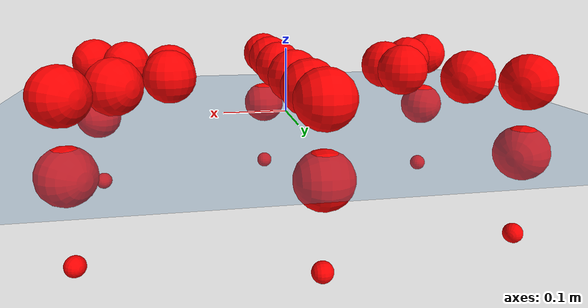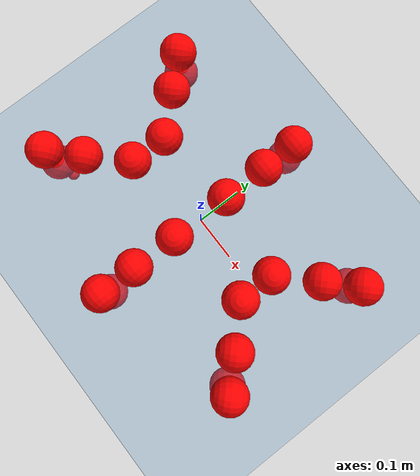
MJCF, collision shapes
<mujoco model="Golem">
  <compiler angle="radian" assetdir="assets" balanceinertia="true" inertiafromgeom="false"/>

  <option timestep="0.005" density="1.2" viscosity="2e-05"/>

  <size nkey="1"/>

  <visual>
    <quality shadowsize="8192"/>
    <map shadowclip="0.5"/>
  </visual>

  <default>
    <default class="/">
      <joint armature="0.01" damping="0.01" frictionloss="0.01"/>
      <geom contype="0" conaffinity="0" group="1" solref="-1000 -80"/>
      <site size="0.01 0.005 0.005" group="5"/>
      <general forcelimited="true" biastype="affine" gainprm="25" biasprm="0 -25 -0.5"/>
      <default class="visual">
        <geom type="mesh" group="2"/>
      </default>
      <default class="collision">
        <geom group="3"/>
      </default>
      <default class="foot">
        <geom size="0.01 0 0" condim="6" group="4" priority="1" solimp="0.015 1 0.01"/>
      </default>
      <default class="reward_collision_sphere">
        <geom group="5" rgba="1 0 0 1"/>
      </default>
    </default>
  </default>

  <asset>
    <texture type="skybox" colorspace="auto" name="//unnamed_texture_0" builtin="gradient" rgb1="0.95 0.95 0.95" rgb2="0.95 0.95 0.95" width="100" height="600"/>
    <texture type="2d" colorspace="auto" name="texplane" builtin="checker" rgb1="0.345 0.575 0.748" rgb2="0.345 0.575 0.748" markrgb="1 1 1" width="512" height="512"/>
    <material name="MatPlane" class="/" texture="texplane" texuniform="true" texrepeat="2 2" specular="0.9"/>
    <mesh name="body" class="/" file="body.stl" scale="0.001 0.001 0.001"/>
    <mesh name="coxa" class="/" file="coxa.stl" scale="0.001 0.001 0.001"/>
    <mesh name="femur" class="/" file="femur.stl" scale="0.001 0.001 0.001"/>
    <mesh name="tibia" class="/" file="tibia.stl" scale="0.001 0.001 0.001"/>
    <mesh name="tarsus" class="/" file="tarsus.stl" scale="0.001 0.001 0.001"/>
  </asset>

  <worldbody>
    <geom name="floor" class="/" size="100 100 0.125" type="plane" group="0" material="MatPlane"/>
    <light name="toplight_shadow" class="/" pos="0 0 5" dir="0.0990148 0.0990148 -0.990148" type="directional" ambient="0.04 0.04 0.04" diffuse="0.55 0.55 0.55" specular="0.12 0.12 0.12"/>
    <light name="toplight_fill" class="/" pos="0 0 5" dir="0.0990148 0.0990148 -0.990148" type="directional" castshadow="false" ambient="0.04 0.04 0.04" diffuse="0.3 0.3 0.3" specular="0.08 0.08 0.08"/>
    <body name="trunk" pos="0.00084671 1.55514e-05 0.000802868" quat="1 -2.79137e-05 -0.000182344 0.000120092">
      <inertial pos="-0.000403893 -0.000594617 -0.00389518" quat="0.999999 0.000645398 0.00111281 -0.000116079" mass="3.51944" diaginertia="0.01987 0.0026389 0.0114885"/>
      <joint name="//unnamed_joint_0" type="free"/>
      <geom name="//unnamed_geom_1" class="/" pos="0 0 0.0656337" quat="1 0 0 0" type="mesh" rgba="0.9 0.9 0.9 1" mesh="body"/>
      <site name="imu" class="/" pos="0.145714 0.00022963 0.106113" size="0.00979059"/>
      <camera name="track" class="/" pos="0 -1.53057 0" quat="0.707107 0.707107 0 0" mode="trackcom"/>
      <camera name="ego_camera" class="/" pos="0.149027 0 0.102553" quat="-0.5 -0.5 0.5 0.5"/>
      <body name="coxa_RR" pos="-0.203551 -0.0641521 0.0651401" quat="0.382819 -9.73923e-05 0.000133969 -0.923823">
        <inertial pos="-0.000148728 3.78038e-05 0.000787125" quat="0.99999 0.000551733 0.00212078 0.00389354" mass="0.189516" diaginertia="0.0199139 0.00265432 0.0114477"/>
        <joint name="coxa_joint_RR" class="/" pos="0 0 0" axis="-0.0040708 -0.00475555 -0.99998" range="-3.12785 3.14226" armature="0.0101259" damping="0.00517697" frictionloss="0.010222"/>
        <geom name="//unnamed_geom_2" class="/" type="mesh" rgba="0.2 0.2 0.2 1" mesh="coxa"/>
        <geom name="//unnamed_geom_3" class="reward_collision_sphere" size="0.0391624" pos="-0.0343909 0 0"/>
        <body name="femur_RR" pos="0.0678345 0.00144161 4.83601e-05" quat="0.500209 -0.500078 0.499713 0.5">
          <inertial pos="0.000514018 5.89726e-05 0.000751546" quat="0.999997 -0.000542333 0.00238519 0.000370937" mass="0.187624" diaginertia="0.0195739 0.00261642 0.0113398"/>
          <joint name="femur_joint_RR" class="/" pos="0 0 0" axis="-0.000822558 0.00153004 -0.999998" range="-3.12948 3.13853" armature="0.00981136" damping="0" frictionloss="0.0101814"/>
          <geom name="//unnamed_geom_4" class="/" type="mesh" rgba="0.9 0.9 0.9 1" mesh="femur"/>
          <geom name="//unnamed_geom_5" class="reward_collision_sphere" size="0.0391624"/>
          <body name="tibia_RR" pos="-0.000618945 -0.0822904 -0.000471182" quat="-3.64161e-05 1 7.04092e-06 -6.654e-05">
            <inertial pos="-0.000665174 -0.000957663 -0.000342765" quat="1 2.96747e-05 0.000202565 -3.08427e-05" mass="0.185971" diaginertia="0.0196873 0.00262266 0.011316"/>
            <joint name="tibia_joint_RR" class="/" pos="0 0 0" axis="0.000119998 0.00151524 0.999999" range="-3.13982 3.13812" armature="0.0098535" damping="0.00282026" frictionloss="0.0102303"/>
            <geom name="//unnamed_geom_6" class="/" type="mesh" rgba="0.2 0.2 0.2 1" mesh="tibia"/>
            <geom name="//unnamed_geom_7" class="reward_collision_sphere" size="0.0391624"/>
            <body name="tarsus_RR" pos="0.0998913 -0.000202415 -0.000606443" quat="1 5.95322e-05 5.42502e-06 1.72877e-05">
              <inertial pos="0.0698812 0.00080647 0.000144092" quat="0.498765 0.502848 0.497199 0.501169" mass="0.185318" diaginertia="0.0197436 0.00260409 0.0113662"/>
              <joint name="tarsus_joint_RR" class="/" pos="0 0 0" axis="0.000345482 -6.15383e-05 1" range="-3.15279 3.15601" armature="0.00966872" damping="0.000978606" frictionloss="0.00975971"/>
              <geom name="//unnamed_geom_8" class="/" type="mesh" rgba="0.9 0.9 0.9 1" mesh="tarsus"/>
              <geom name="foot_1" class="foot" size="0.00940178" pos="0.128393 0 0" quat="0 -0.707107 0 0.707107"/>
              <geom name="//unnamed_geom_10" class="reward_collision_sphere" size="0.0391624"/>
              <geom name="//unnamed_geom_11" class="reward_collision_sphere" size="0.0146859" pos="0.123234 0 0"/>
              <site name="foot_1" class="foot" pos="0.128393 0 0" quat="0 -0.707107 0 0.707107" size="0.00979059"/>
            </body>
          </body>
        </body>
      </body>
      <body name="coxa_RM" pos="-0.000702531 -0.102088 0.064601" quat="0.707007 0.000187449 -0.000226059 -0.707207">
        <inertial pos="-9.80239e-05 0.000979359 -0.000352713" quat="0.999996 -0.00163269 -0.000354862 -0.00214895" mass="0.187543" diaginertia="0.0197667 0.00262557 0.0112858"/>
        <joint name="coxa_joint_RM" class="/" pos="0 0 0" axis="-1.69416e-05 0.000235525 -1" range="-3.14834 3.14622" armature="0.00980031" damping="0.00922186" frictionloss="0.00969651"/>
        <geom name="//unnamed_geom_12" class="/" type="mesh" rgba="0.2 0.2 0.2 1" mesh="coxa"/>
        <geom name="//unnamed_geom_13" class="reward_collision_sphere" size="0.0391624" pos="-0.0343909 0 0"/>
        <body name="femur_RM" pos="0.0674181 -0.000677224 0.00115305" quat="0.500015 -0.500005 0.500032 0.499948">
          <inertial pos="-0.00032925 0.000795251 -0.000805111" quat="1 -0.000153973 0.000111137 -0.000177007" mass="0.186882" diaginertia="0.0197385 0.00262464 0.0112404"/>
          <joint name="femur_joint_RM" class="/" pos="0 0 0" axis="-0.000956584 -0.00336679 -0.999994" range="-3.13174 3.14243" armature="0.00954708" damping="0.00469792" frictionloss="0.00981405"/>
          <geom name="//unnamed_geom_14" class="/" type="mesh" rgba="0.9 0.9 0.9 1" mesh="femur"/>
          <geom name="//unnamed_geom_15" class="reward_collision_sphere" size="0.0391624"/>
          <body name="tibia_RM" pos="0.000630355 -0.0836493 0.000182354" quat="0.00015486 1 0.000258588 0.000172722">
            <inertial pos="9.37156e-05 0.000398 0.000125089" quat="1 -0.000150708 0.000200866 0.000239723" mass="0.186369" diaginertia="0.0195106 0.00258524 0.0113239"/>
            <joint name="tibia_joint_RM" class="/" pos="0 0 0" axis="8.58041e-05 -0.000192807 1" range="-3.14499 3.14247" armature="0.00952494" damping="0" frictionloss="0.00949162"/>
            <geom name="//unnamed_geom_16" class="/" type="mesh" rgba="0.2 0.2 0.2 1" mesh="tibia"/>
            <geom name="//unnamed_geom_17" class="reward_collision_sphere" size="0.0391624"/>
            <body name="tarsus_RM" pos="0.100769 -0.000488356 0.000334366" quat="1 8.66968e-05 -0.000132279 9.76345e-05">
              <inertial pos="0.0686967 0.000666523 -0.000637619" quat="0.497641 0.501962 0.501142 0.499243" mass="0.187586" diaginertia="0.0195583 0.00262169 0.0112429"/>
              <joint name="tarsus_joint_RM" class="/" pos="0 0 0" axis="-0.000304339 -2.90138e-05 1" stiffness="0.000699665" range="-3.13626 3.12956" armature="0.00975056" damping="0.00654024" frictionloss="0.00960266"/>
              <geom name="//unnamed_geom_18" class="/" type="mesh" rgba="0.9 0.9 0.9 1" mesh="tarsus"/>
              <geom name="foot_2" class="foot" size="0.00980735" pos="0.128393 0 0" quat="0 -0.707107 0 0.707107"/>
              <geom name="//unnamed_geom_20" class="reward_collision_sphere" size="0.0391624"/>
              <geom name="//unnamed_geom_21" class="reward_collision_sphere" size="0.0146859" pos="0.123234 0 0"/>
              <site name="foot_2" class="foot" pos="0.128393 0 0" quat="0 -0.707107 0 0.707107" size="0.00979059"/>
            </body>
          </body>
        </body>
      </body>
      <body name="coxa_RF" pos="0.204531 -0.064017 0.0653945" quat="0.923668 0.000242295 -2.92124e-05 -0.383194">
        <inertial pos="-0.000284843 -0.0010873 0.000782313" quat="1 -0.00078672 -0.000524523 -0.000115859" mass="0.184933" diaginertia="0.0195822 0.00261194 0.0112869"/>
        <joint name="coxa_joint_RF" class="/" pos="0 0 0" axis="0.00187487 0.00158481 -0.999997" range="-3.13781 3.122" armature="0.00979221" damping="0" frictionloss="0.00970499"/>
        <geom name="//unnamed_geom_22" class="/" type="mesh" rgba="0.2 0.2 0.2 1" mesh="coxa"/>
        <geom name="//unnamed_geom_23" class="reward_collision_sphere" size="0.0391624" pos="-0.0343909 0 0"/>
        <body name="femur_RF" pos="0.0682802 0.00117469 -0.00038704" quat="0.499998 -0.500018 0.500028 0.499956">
          <inertial pos="0.000514391 8.79006e-06 -0.000434509" quat="0.999999 -0.00112998 0.000758224 0.000294801" mass="0.187346" diaginertia="0.019746 0.00257293 0.0112592"/>
          <joint name="femur_joint_RF" class="/" pos="0 0 0" axis="-2.90757e-05 7.78845e-05 -1" range="-3.13501 3.14719" armature="0.00976105" damping="0.00544327" frictionloss="0.0101435"/>
          <geom name="//unnamed_geom_24" class="/" type="mesh" rgba="0.9 0.9 0.9 1" mesh="femur"/>
          <geom name="//unnamed_geom_25" class="reward_collision_sphere" size="0.0391624"/>
          <body name="tibia_RF" pos="6.10773e-05 -0.0838493 -0.000416546" quat="-7.18565e-05 1 7.54141e-05 0.000136646">
            <inertial pos="-0.000669487 0.000816099 -0.000131082" quat="0.999996 -1.87031e-05 0.000771682 -0.0026485" mass="0.1906" diaginertia="0.0199958 0.00265482 0.0113437"/>
            <joint name="tibia_joint_RF" class="/" pos="0 0 0" axis="-0.00505972 0.00177605 0.999986" range="-3.13826 3.13875" armature="0.0100329" damping="0.00437397" frictionloss="0.00989469"/>
            <geom name="//unnamed_geom_26" class="/" type="mesh" rgba="0.2 0.2 0.2 1" mesh="tibia"/>
            <geom name="//unnamed_geom_27" class="reward_collision_sphere" size="0.0391624"/>
            <body name="tarsus_RF" pos="0.100629 0.00108314 -0.000889797" quat="1 -0.000185032 -9.96621e-06 -0.000362735">
              <inertial pos="0.0679343 3.72645e-05 -0.000439153" quat="0.499964 0.499877 0.500082 0.500078" mass="0.186895" diaginertia="0.0198038 0.00264436 0.0112491"/>
              <joint name="tarsus_joint_RF" class="/" pos="0 0 0" axis="0.000566431 -0.000278445 1" stiffness="0.0025611" range="-3.12689 3.13741" armature="0.00975956" damping="0.00373454" frictionloss="0.00970515"/>
              <geom name="//unnamed_geom_28" class="/" type="mesh" rgba="0.9 0.9 0.9 1" mesh="tarsus"/>
              <geom name="foot_3" class="foot" size="0.010108" pos="0.128393 0 0" quat="0 -0.707107 0 0.707107"/>
              <geom name="//unnamed_geom_30" class="reward_collision_sphere" size="0.0391624"/>
              <geom name="//unnamed_geom_31" class="reward_collision_sphere" size="0.0146859" pos="0.123234 0 0"/>
              <site name="foot_3" class="foot" pos="0.128393 0 0" quat="0 -0.707107 0 0.707107" size="0.00979059"/>
            </body>
          </body>
        </body>
      </body>
      <body name="coxa_LR" pos="-0.203513 0.0660221 0.0668169" quat="0.382704 -0.000301694 -5.54591e-05 0.923871">
        <inertial pos="-0.000219544 -0.000650179 0.000831393" quat="1 -0.000462572 -9.74893e-05 5.22031e-05" mass="0.186824" diaginertia="0.019741 0.00263051 0.0112802"/>
        <joint name="coxa_joint_LR" class="/" pos="0 0 0" axis="0.00163659 -0.00173201 -0.999997" range="-3.12534 3.13963" armature="0.0100201" damping="0.00739251" frictionloss="0.00962705"/>
        <geom name="//unnamed_geom_32" class="/" type="mesh" rgba="0.2 0.2 0.2 1" mesh="coxa"/>
        <geom name="//unnamed_geom_33" class="reward_collision_sphere" size="0.0391624" pos="-0.0343909 0 0"/>
        <body name="femur_LR" pos="0.069195 -0.00167318 -0.00237529" quat="0.500018 -0.499999 0.499933 0.50005">
          <inertial pos="-0.000251834 0.000414952 -0.000916909" quat="1 -0.00025074 0.000561858 -0.000478898" mass="0.185089" diaginertia="0.0198266 0.00261558 0.0113079"/>
          <joint name="femur_joint_LR" class="/" pos="0 0 0" axis="0.000486995 -0.000599498 1" stiffness="0.000696655" range="-3.15412 3.13606" armature="0.0096812" damping="0.0076932" frictionloss="0.00985101"/>
          <geom name="//unnamed_geom_34" class="/" type="mesh" rgba="0.9 0.9 0.9 1" mesh="femur"/>
          <geom name="//unnamed_geom_35" class="reward_collision_sphere" size="0.0391624"/>
          <body name="tibia_LR" pos="-0.000689508 -0.0841388 -0.00209963" quat="-3.77539e-05 1 -8.25865e-05 -0.000319458">
            <inertial pos="-0.000944264 0.000158336 -0.000255801" quat="1 3.52078e-05 0.000312952 -0.000651802" mass="0.186576" diaginertia="0.0199286 0.00261713 0.0114831"/>
            <joint name="tibia_joint_LR" class="/" pos="0 0 0" axis="0.00255346 -0.00148233 -0.999996" range="-3.13254 3.14545" armature="0.00984216" damping="0.00258639" frictionloss="0.00988701"/>
            <geom name="//unnamed_geom_36" class="/" type="mesh" rgba="0.2 0.2 0.2 1" mesh="tibia"/>
            <geom name="//unnamed_geom_37" class="reward_collision_sphere" size="0.0391624"/>
            <body name="tarsus_LR" pos="0.100743 0.00062165 0.00205056" quat="1 5.22885e-05 3.5764e-05 -0.000132186">
              <inertial pos="0.0693918 0.000913915 5.79542e-05" quat="0.499933 0.500367 0.499807 0.499893" mass="0.18704" diaginertia="0.0197833 0.00262467 0.0112229"/>
              <joint name="tarsus_joint_LR" class="/" pos="0 0 0" axis="0.000638589 -0.000112753 -1" range="-3.13647 3.13327" armature="0.00955499" damping="0.0259435" frictionloss="0.00976113"/>
              <geom name="//unnamed_geom_38" class="/" type="mesh" rgba="0.9 0.9 0.9 1" mesh="tarsus"/>
              <geom name="foot_4" class="foot" size="0.00954967" pos="0.128393 0 0" quat="0.707107 0 -0.707107 0"/>
              <geom name="//unnamed_geom_40" class="reward_collision_sphere" size="0.0391624"/>
              <geom name="//unnamed_geom_41" class="reward_collision_sphere" size="0.0146859" pos="0.123234 0 0"/>
              <site name="foot_4" class="foot" pos="0.128393 0 0" quat="0.707107 0 -0.707107 0" size="0.00979059"/>
            </body>
          </body>
        </body>
      </body>
      <body name="coxa_LM" pos="-0.000693533 0.0994343 0.0656153" quat="0.707171 9.74623e-05 -2.34991e-05 0.707043">
        <inertial pos="0.000204652 8.12921e-05 0.000586157" quat="1 -0.000719242 -0.000221424 0.000108043" mass="0.188232" diaginertia="0.0200719 0.0026299 0.0113178"/>
        <joint name="coxa_joint_LM" class="/" pos="0 0 0" axis="0.00142327 -0.000974349 -0.999999" range="-3.13628 3.13729" armature="0.00973477" damping="0" frictionloss="0.0102307"/>
        <geom name="//unnamed_geom_42" class="/" type="mesh" rgba="0.2 0.2 0.2 1" mesh="coxa"/>
        <geom name="//unnamed_geom_43" class="reward_collision_sphere" size="0.0391624" pos="-0.0343909 0 0"/>
        <body name="femur_LM" pos="0.0650179 0.00129456 -0.000770879" quat="0.499979 -0.500015 0.49995 0.500056">
          <inertial pos="-0.00102208 -0.000398121 0.000889708" quat="1 0.000173917 0.000149527 1.2205e-05" mass="0.186072" diaginertia="0.0193564 0.00260381 0.0111921"/>
          <joint name="femur_joint_LM" class="/" pos="0 0 0" axis="-0.00443988 -0.00550612 0.999975" range="-3.13525 3.15347" armature="0.00965037" damping="0" frictionloss="0.00981098"/>
          <geom name="//unnamed_geom_44" class="/" type="mesh" rgba="0.9 0.9 0.9 1" mesh="femur"/>
          <geom name="//unnamed_geom_45" class="reward_collision_sphere" size="0.0391624"/>
          <body name="tibia_LM" pos="0.000620909 -0.0799545 0.00124471" quat="-4.93469e-05 1 5.62177e-05 1.11351e-05">
            <inertial pos="-0.000302387 -0.0013297 -0.000180313" quat="1 -0.000146434 -4.34277e-05 -9.14134e-05" mass="0.188165" diaginertia="0.0197595 0.00260713 0.0111767"/>
            <joint name="tibia_joint_LM" class="/" pos="0 0 0" axis="0.0018959 -0.000419682 -0.999998" range="-3.13501 3.1523" armature="0.0101862" damping="0" frictionloss="0.00929381"/>
            <geom name="//unnamed_geom_46" class="/" type="mesh" rgba="0.2 0.2 0.2 1" mesh="tibia"/>
            <geom name="//unnamed_geom_47" class="reward_collision_sphere" size="0.0391624"/>
            <body name="tarsus_LM" pos="0.100666 -0.000576847 -0.000449197" quat="1 5.95887e-06 -4.36427e-05 -2.30443e-05">
              <inertial pos="0.0692684 5.81662e-05 0.000853413" quat="0.498691 0.500106 0.500616 0.500585" mass="0.188605" diaginertia="0.0201043 0.0026246 0.0115142"/>
              <joint name="tarsus_joint_LM" class="/" pos="0 0 0" axis="0.000529306 -0.000203478 -1" range="-3.15246 3.13828" armature="0.00980795" damping="0" frictionloss="0.00974451"/>
              <geom name="//unnamed_geom_48" class="/" type="mesh" rgba="0.9 0.9 0.9 1" mesh="tarsus"/>
              <geom name="foot_5" class="foot" size="0.0102885" pos="0.128393 0 0" quat="0.707107 0 -0.707107 0"/>
              <geom name="//unnamed_geom_50" class="reward_collision_sphere" size="0.0391624"/>
              <geom name="//unnamed_geom_51" class="reward_collision_sphere" size="0.0146859" pos="0.123234 0 0"/>
              <site name="foot_5" class="foot" pos="0.128393 0 0" quat="0.707107 0 -0.707107 0" size="0.00979059"/>
            </body>
          </body>
        </body>
      </body>
      <body name="coxa_LF" pos="0.204043 0.0637286 0.0653093" quat="0.923874 -1.5441e-05 3.96212e-06 0.382697">
        <inertial pos="0.000185018 -0.000568432 -5.18948e-05" quat="1 0.000251139 0.000198921 -8.24987e-05" mass="0.190279" diaginertia="0.0200629 0.00263741 0.0113963"/>
        <joint name="coxa_joint_LF" class="/" pos="0 0 0" axis="0.00823195 0.00127134 -0.999965" range="-3.1535 3.137" armature="0.00938814" damping="0" frictionloss="0.00998567"/>
        <geom name="//unnamed_geom_52" class="/" type="mesh" rgba="0.2 0.2 0.2 1" mesh="coxa"/>
        <geom name="//unnamed_geom_53" class="reward_collision_sphere" size="0.0391624" pos="-0.0343909 0 0"/>
        <body name="femur_LF" pos="0.0678277 0.000951911 -0.000604715" quat="0.499979 -0.500212 0.499865 0.499945">
          <inertial pos="0.0003092 -0.000920831 0.000104343" quat="0.999998 -0.0017854 0.000829559 0.000769988" mass="0.185663" diaginertia="0.0195459 0.00260046 0.0113087"/>
          <joint name="femur_joint_LF" class="/" pos="0 0 0" axis="0.00314188 0.0024911 0.999992" range="-3.14901 3.14013" armature="0.00935932" damping="0.00105357" frictionloss="0.00986937"/>
          <geom name="//unnamed_geom_54" class="/" type="mesh" rgba="0.9 0.9 0.9 1" mesh="femur"/>
          <geom name="//unnamed_geom_55" class="reward_collision_sphere" size="0.0391624"/>
          <body name="tibia_LF" pos="0.000385861 -0.0822841 7.41033e-05" quat="1.24491e-05 1 3.18366e-06 1.01963e-05">
            <inertial pos="0.000301925 0.0004284 0.000858377" quat="1 -0.000149313 4.68112e-05 0.000147331" mass="0.187533" diaginertia="0.0197003 0.00259196 0.0114396"/>
            <joint name="tibia_joint_LF" class="/" pos="0 0 0" axis="0.00248796 0.00579599 -0.99998" range="-3.15639 3.13401" armature="0.00955056" damping="0.00386706" frictionloss="0.0102265"/>
            <geom name="//unnamed_geom_56" class="/" type="mesh" rgba="0.2 0.2 0.2 1" mesh="tibia"/>
            <geom name="//unnamed_geom_57" class="reward_collision_sphere" size="0.0391624"/>
            <body name="tarsus_LF" pos="0.101607 -0.000314649 -7.60776e-05" quat="1 2.88914e-05 -8.18012e-05 -1.76668e-05">
              <inertial pos="0.0699752 -0.000144915 0.000214727" quat="0.499171 0.499349 0.499711 0.501765" mass="0.187644" diaginertia="0.0197504 0.00261626 0.0114402"/>
              <joint name="tarsus_joint_LF" class="/" pos="0 0 0" axis="-0.000667413 0.000486248 -1" range="-3.13285 3.13025" armature="0.00932288" damping="0.0115975" frictionloss="0.00936306"/>
              <geom name="//unnamed_geom_58" class="/" type="mesh" rgba="0.9 0.9 0.9 1" mesh="tarsus"/>
              <geom name="foot_6" class="foot" size="0.00950898" pos="0.128393 0 0" quat="0.707107 0 -0.707107 0"/>
              <geom name="//unnamed_geom_60" class="reward_collision_sphere" size="0.0391624"/>
              <geom name="//unnamed_geom_61" class="reward_collision_sphere" size="0.0146859" pos="0.123234 0 0"/>
              <site name="foot_6" class="foot" pos="0.128393 0 0" quat="0.707107 0 -0.707107 0" size="0.00979059"/>
            </body>
          </body>
        </body>
      </body>
    </body>
  </worldbody>

  <contact>
    <pair class="/" geom1="floor" geom2="foot_1" name="//unnamed_contact_0"/>
    <pair class="/" geom1="floor" geom2="foot_2" name="//unnamed_contact_1"/>
    <pair class="/" geom1="floor" geom2="foot_3" name="//unnamed_contact_2"/>
    <pair class="/" geom1="floor" geom2="foot_4" name="//unnamed_contact_3"/>
    <pair class="/" geom1="floor" geom2="foot_5" name="//unnamed_contact_4"/>
    <pair class="/" geom1="floor" geom2="foot_6" name="//unnamed_contact_5"/>
  </contact>

  <actuator>
    <general name="coxa_joint_RR" class="/" joint="coxa_joint_RR" forcerange="-7.0262 7.0262" gainprm="23.5687" biasprm="0 -23.5687 -0.506545"/>
    <general name="femur_joint_RR" class="/" joint="femur_joint_RR" forcerange="-7.204 7.204" gainprm="23.5687" biasprm="0 -23.5687 -0.506545"/>
    <general name="tibia_joint_RR" class="/" joint="tibia_joint_RR" forcerange="-7.14256 7.14256" gainprm="23.5687" biasprm="0 -23.5687 -0.506545"/>
    <general name="tarsus_joint_RR" class="/" joint="tarsus_joint_RR" forcerange="-7.10269 7.10269" gainprm="23.5687" biasprm="0 -23.5687 -0.506545"/>
    <general name="coxa_joint_RM" class="/" joint="coxa_joint_RM" forcerange="-7.20696 7.20696" gainprm="23.5687" biasprm="0 -23.5687 -0.506545"/>
    <general name="femur_joint_RM" class="/" joint="femur_joint_RM" forcerange="-7.20371 7.20371" gainprm="23.5687" biasprm="0 -23.5687 -0.506545"/>
    <general name="tibia_joint_RM" class="/" joint="tibia_joint_RM" forcerange="-7.12185 7.12185" gainprm="23.5687" biasprm="0 -23.5687 -0.506545"/>
    <general name="tarsus_joint_RM" class="/" joint="tarsus_joint_RM" forcerange="-7.32854 7.32854" gainprm="23.5687" biasprm="0 -23.5687 -0.506545"/>
    <general name="coxa_joint_RF" class="/" joint="coxa_joint_RF" forcerange="-7.2179 7.2179" gainprm="23.5687" biasprm="0 -23.5687 -0.506545"/>
    <general name="femur_joint_RF" class="/" joint="femur_joint_RF" forcerange="-7.16587 7.16587" gainprm="23.5687" biasprm="0 -23.5687 -0.506545"/>
    <general name="tibia_joint_RF" class="/" joint="tibia_joint_RF" forcerange="-7.13344 7.13344" gainprm="23.5687" biasprm="0 -23.5687 -0.506545"/>
    <general name="tarsus_joint_RF" class="/" joint="tarsus_joint_RF" forcerange="-7.04217 7.04217" gainprm="23.5687" biasprm="0 -23.5687 -0.506545"/>
    <general name="coxa_joint_LR" class="/" joint="coxa_joint_LR" forcerange="-7.1742 7.1742" gainprm="23.5687" biasprm="0 -23.5687 -0.506545"/>
    <general name="femur_joint_LR" class="/" joint="femur_joint_LR" forcerange="-7.2227 7.2227" gainprm="23.5687" biasprm="0 -23.5687 -0.506545"/>
    <general name="tibia_joint_LR" class="/" joint="tibia_joint_LR" forcerange="-7.25583 7.25583" gainprm="23.5687" biasprm="0 -23.5687 -0.506545"/>
    <general name="tarsus_joint_LR" class="/" joint="tarsus_joint_LR" forcerange="-7.14312 7.14312" gainprm="23.5687" biasprm="0 -23.5687 -0.506545"/>
    <general name="coxa_joint_LM" class="/" joint="coxa_joint_LM" forcerange="-7.11218 7.11218" gainprm="23.5687" biasprm="0 -23.5687 -0.506545"/>
    <general name="femur_joint_LM" class="/" joint="femur_joint_LM" forcerange="-7.33865 7.33865" gainprm="23.5687" biasprm="0 -23.5687 -0.506545"/>
    <general name="tibia_joint_LM" class="/" joint="tibia_joint_LM" forcerange="-7.14 7.14" gainprm="23.5687" biasprm="0 -23.5687 -0.506545"/>
    <general name="tarsus_joint_LM" class="/" joint="tarsus_joint_LM" forcerange="-6.91055 6.91055" gainprm="23.5687" biasprm="0 -23.5687 -0.506545"/>
    <general name="coxa_joint_LF" class="/" joint="coxa_joint_LF" forcerange="-7.12029 7.12029" gainprm="23.5687" biasprm="0 -23.5687 -0.506545"/>
    <general name="femur_joint_LF" class="/" joint="femur_joint_LF" forcerange="-6.94557 6.94557" gainprm="23.5687" biasprm="0 -23.5687 -0.506545"/>
    <general name="tibia_joint_LF" class="/" joint="tibia_joint_LF" forcerange="-7.13863 7.13863" gainprm="23.5687" biasprm="0 -23.5687 -0.506545"/>
    <general name="tarsus_joint_LF" class="/" joint="tarsus_joint_LF" forcerange="-6.88605 6.88605" gainprm="23.5687" biasprm="0 -23.5687 -0.506545"/>
  </actuator>

  <sensor>
    <gyro site="imu" name="imu_angular_velocity"/>
    <velocimeter site="imu" name="imu_linear_velocity"/>
    <framelinvel objtype="site" objname="foot_1" name="foot_1_global_linear_velocity"/>
    <framelinvel objtype="site" objname="foot_2" name="foot_2_global_linear_velocity"/>
    <framelinvel objtype="site" objname="foot_3" name="foot_3_global_linear_velocity"/>
    <framelinvel objtype="site" objname="foot_4" name="foot_4_global_linear_velocity"/>
    <framelinvel objtype="site" objname="foot_5" name="foot_5_global_linear_velocity"/>
    <framelinvel objtype="site" objname="foot_6" name="foot_6_global_linear_velocity"/>
  </sensor>

  <keyframe>
    <key name="home" qpos="0 0 0.1457 1 0 0 0 0 0 0 0 0 0 0 0 0 0 0 0 0 0 0 0 0 0 0 0 0 0 0 0"/>
  </keyframe>
</mujoco>
